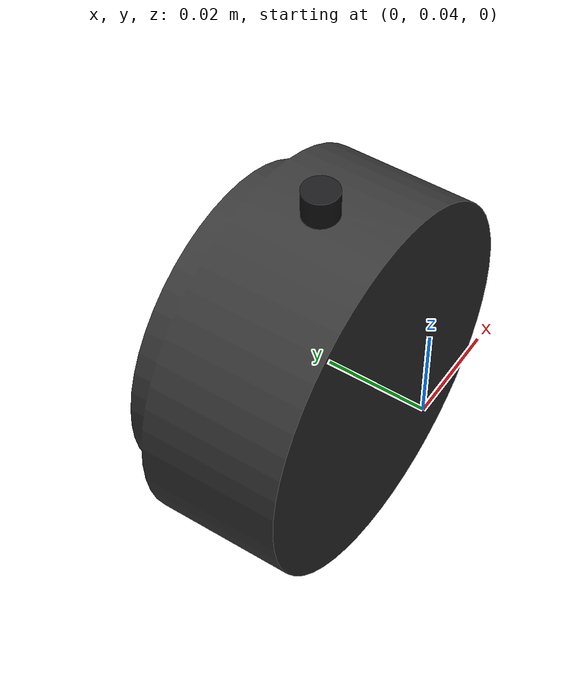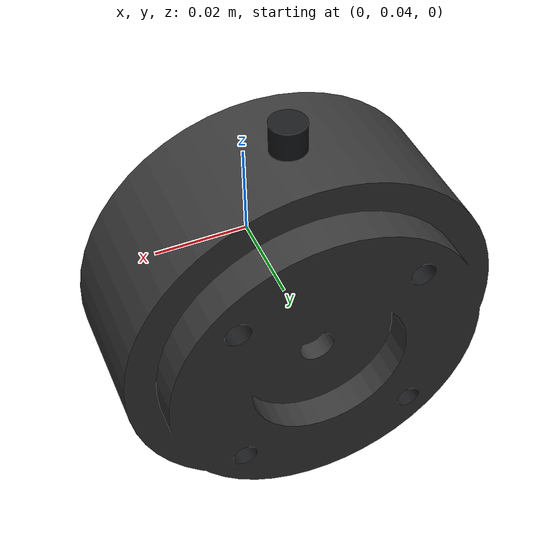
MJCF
<mujoco model="wrist3">
  <default>
    <default class="visual">
      <geom group="2" type="mesh" contype="0" conaffinity="0"/>
    </default>
    <default class="collision">
      <geom group="3" type="mesh"/>
    </default>
  </default>
  <asset>
    <material name="material_wrist3_0" specular="0.20000000000000004" shininess="1.0" rgba="0.21568627 0.21568627 0.21568627 1.0"/>
    <material name="material_wrist3_1" specular="0.20000000000000004" shininess="1.0" rgba="0.09803922 0.10196078 0.10980392 1.0"/>
    <mesh file="wrist3_0.obj"/>
    <mesh file="wrist3_1.obj"/>
  </asset>
  <worldbody>
    <body name="wrist3">
      <geom mesh="wrist3_0" material="material_wrist3_1" class="visual"/>
      <geom mesh="wrist3_1" material="material_wrist3_0" class="visual"/>
      <geom mesh="wrist3_0" class="collision"/>
      <geom mesh="wrist3_1" class="collision"/>
    </body>
  </worldbody>
</mujoco>
